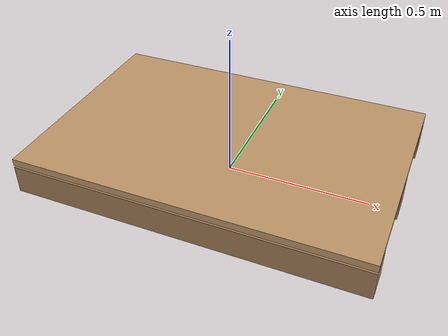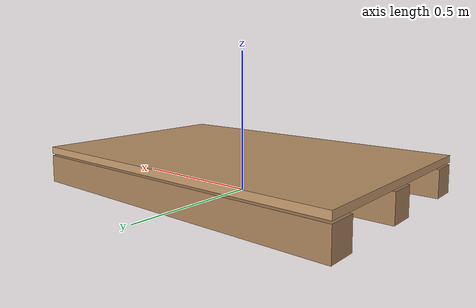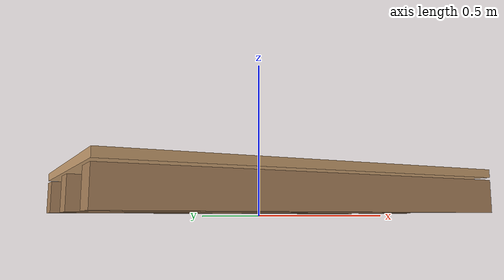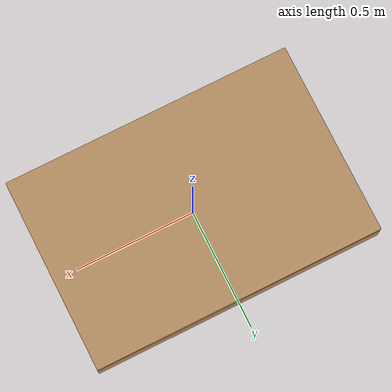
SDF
<?xml version="1.0" ?>
<sdf version="1.6">
  <model name="euro_pallet">
    <static>false</static>
    <link name="pallet_link">
      <inertial>
        <pose>0 0 0.07 0 0 0</pose>
        <mass>12.0</mass>
        <inertia>
          <ixx>0.8</ixx><ixy>0</ixy><ixz>0</ixz>
          <iyy>1.6</iyy><iyz>0</iyz>
          <izz>2.2</izz>
        </inertia>
      </inertial>

      <!-- Top Deck Slats -->
      <visual name="top_deck_vis">
        <pose>0 0 0.13 0 0 0</pose>
        <geometry><box><size>1.20 0.80 0.025</size></box></geometry>
        <material><ambient>0.76 0.60 0.42 1</ambient><diffuse>0.76 0.60 0.42 1</diffuse></material>
      </visual>
      <collision name="top_deck_col">
        <pose>0 0 0.13 0 0 0</pose>
        <geometry><box><size>1.20 0.80 0.025</size></box></geometry>
      </collision>

      <!-- 3 Longitudinal Runner Blocks -->
      <visual name="runner_left_vis">
        <pose>0 0.35 0.06 0 0 0</pose>
        <geometry><box><size>1.20 0.10 0.10</size></box></geometry>
        <material><ambient>0.65 0.50 0.35 1</ambient><diffuse>0.65 0.50 0.35 1</diffuse></material>
      </visual>
      <collision name="runner_left_col">
        <pose>0 0.35 0.06 0 0 0</pose>
        <geometry><box><size>1.20 0.10 0.10</size></box></geometry>
      </collision>

      <visual name="runner_mid_vis">
        <pose>0 0 0.06 0 0 0</pose>
        <geometry><box><size>1.20 0.10 0.10</size></box></geometry>
        <material><ambient>0.65 0.50 0.35 1</ambient><diffuse>0.65 0.50 0.35 1</diffuse></material>
      </visual>
      <collision name="runner_mid_col">
        <pose>0 0 0.06 0 0 0</pose>
        <geometry><box><size>1.20 0.10 0.10</size></box></geometry>
      </collision>

      <visual name="runner_right_vis">
        <pose>0 -0.35 0.06 0 0 0</pose>
        <geometry><box><size>1.20 0.10 0.10</size></box></geometry>
        <material><ambient>0.65 0.50 0.35 1</ambient><diffuse>0.65 0.50 0.35 1</diffuse></material>
      </visual>
      <collision name="runner_right_col">
        <pose>0 -0.35 0.06 0 0 0</pose>
        <geometry><box><size>1.20 0.10 0.10</size></box></geometry>
      </collision>
    </link>
  </model>
</sdf>
